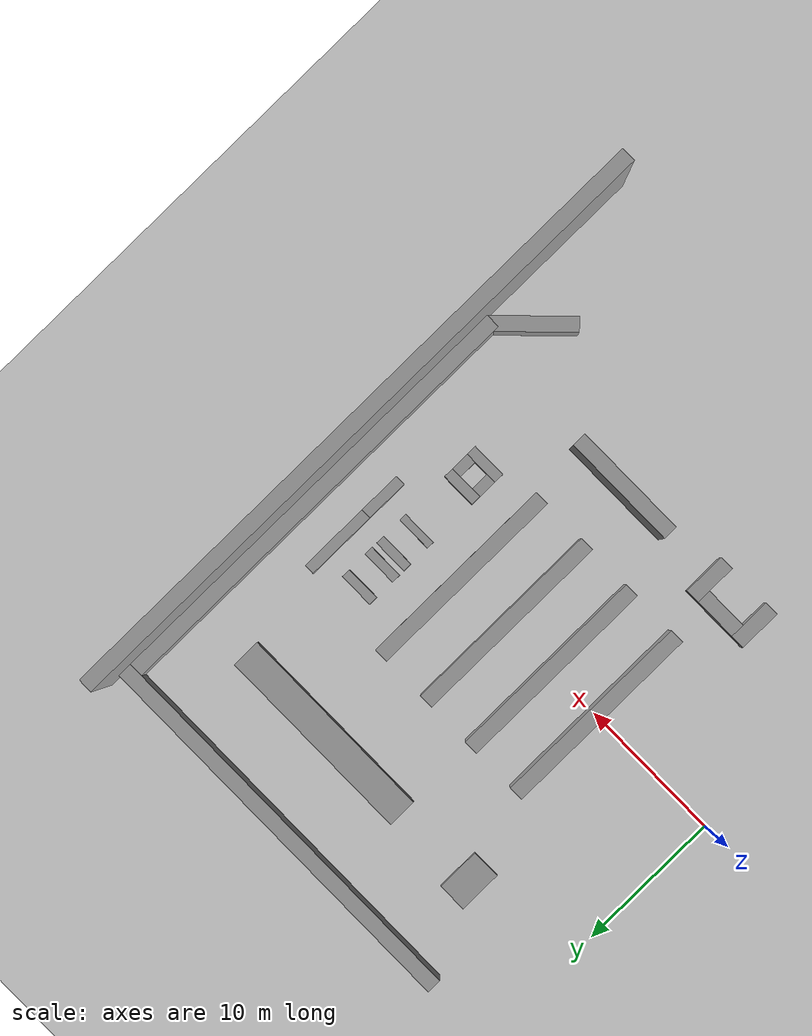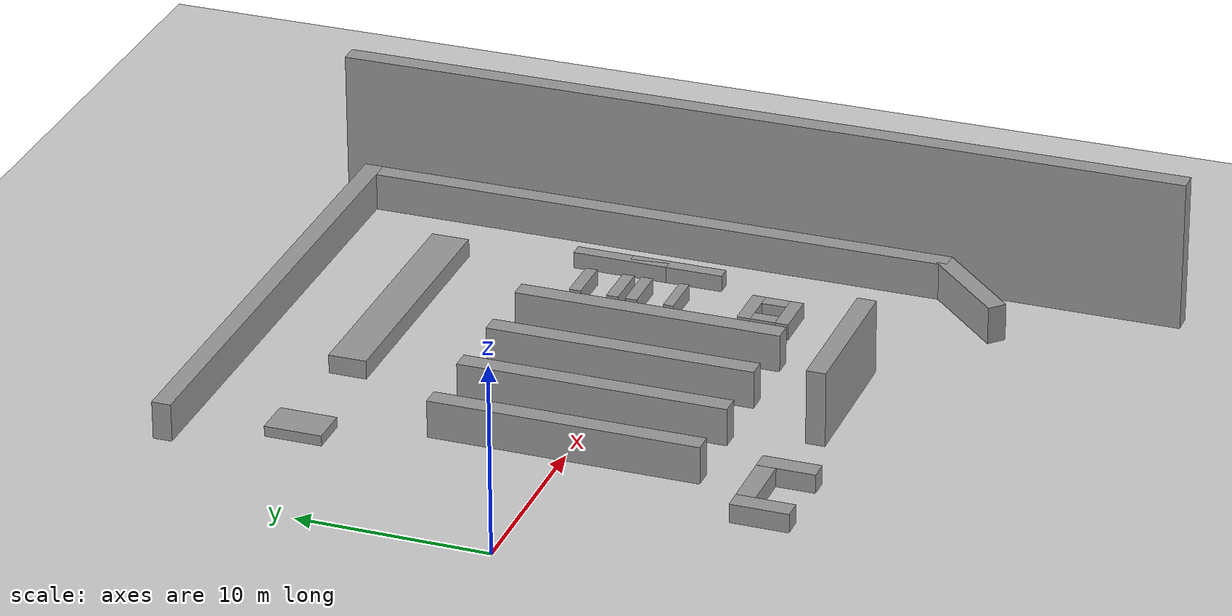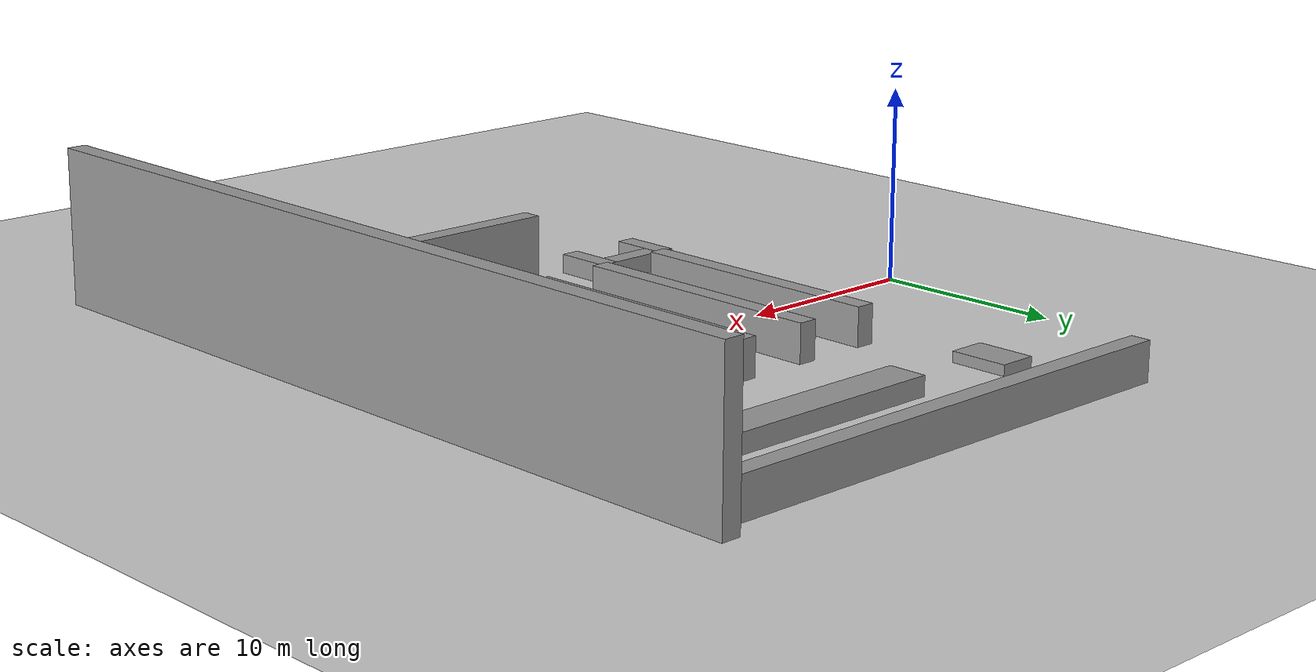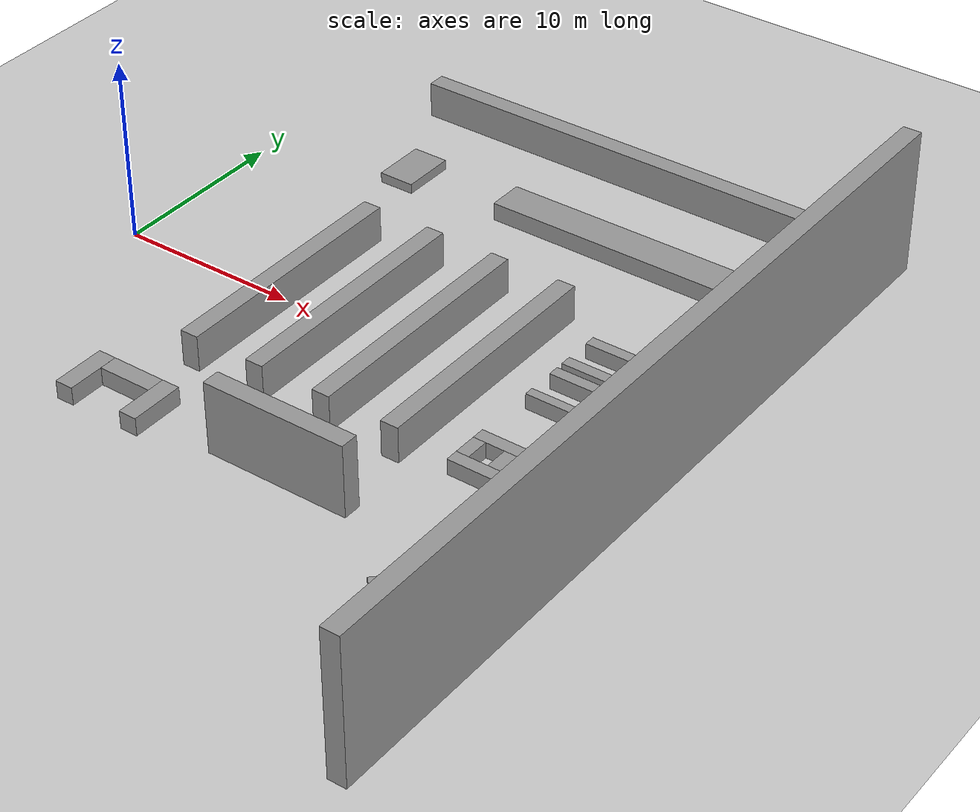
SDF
<sdf version="1.6">
 <world name="default">
  <model name="ground_plane">
   <static>1</static>
   <link name="link">
    <collision name="collision">
     <geometry><plane><normal>0 0 1</normal><size>100 100</size></plane></geometry>
     <surface>
      <contact><collide_bitmask>65535</collide_bitmask></contact>
      <friction><ode><mu>100</mu><mu2>50</mu2></ode></friction>
     </surface>
    </collision>
    <visual name="visual">
     <cast_shadows>0</cast_shadows>
     <geometry><plane><normal>0 0 1</normal><size>100 100</size></plane></geometry>
     <material>
      <script><uri>file://media/materials/scripts/gazebo.material</uri><name>Gazebo/Grey</name></script>
     </material>
    </visual>
   </link>
  </model>
  <model name="shelf_4">
   <link name="link">
    <inertial>
     <mass>1</mass>
     <inertia>
      <ixx>0.166667</ixx>
      <ixy>0</ixy>
      <ixz>0</ixz>
      <iyy>0.166667</iyy>
      <iyz>0</iyz>
      <izz>0.166667</izz>
     </inertia>
    </inertial>
    <visual name="visual">
     <geometry><box><size>1 14 2</size></box></geometry>
     <material>
      <script><name>Gazebo/Grey</name><uri>file://media/materials/scripts/gazebo.material</uri></script>
     </material>
    </visual>
    <collision name="collision">
     <geometry><box><size>1 14 2</size></box></geometry>
     <surface>
      <friction>
       <ode><mu>1</mu><mu2>1</mu2><fdir1>0 0 0</fdir1><slip1>0</slip1><slip2>0</slip2></ode>
       <torsional>
        <coefficient>1</coefficient>
        <patch_radius>0</patch_radius>
        <surface_radius>0</surface_radius>
        <use_patch_radius>1</use_patch_radius>
        <ode><slip>0</slip></ode>
       </torsional>
      </friction>
      <bounce><restitution_coefficient>0</restitution_coefficient><threshold>1e+06</threshold></bounce>
      <contact>
       <collide_without_contact>0</collide_without_contact>
       <collide_without_contact_bitmask>1</collide_without_contact_bitmask>
       <collide_bitmask>1</collide_bitmask>
       <ode>
        <soft_cfm>0</soft_cfm>
        <soft_erp>0.2</soft_erp>
        <kp>1e+13</kp>
        <kd>1</kd>
        <max_vel>0.01</max_vel>
        <min_depth>0</min_depth>
       </ode>
       <bullet>
        <split_impulse>1</split_impulse>
        <split_impulse_penetration_threshold>-0.01</split_impulse_penetration_threshold>
        <soft_cfm>0</soft_cfm>
        <soft_erp>0.2</soft_erp>
        <kp>1e+13</kp>
        <kd>1</kd>
       </bullet>
      </contact>
     </surface>
    </collision>
   </link>
   <static>1</static>
   <pose>10 0 1 0 -0 0</pose>
  </model>
  <model name="shelf_5">
   <link name="link">
    <inertial>
     <mass>1</mass>
     <inertia>
      <ixx>0.166667</ixx>
      <ixy>0</ixy>
      <ixz>0</ixz>
      <iyy>0.166667</iyy>
      <iyz>0</iyz>
      <izz>0.166667</izz>
     </inertia>
    </inertial>
    <visual name="visual">
     <geometry><box><size>1 14 2</size></box></geometry>
     <material>
      <script><name>Gazebo/Grey</name><uri>file://media/materials/scripts/gazebo.material</uri></script>
     </material>
    </visual>
    <collision name="collision">
     <geometry><box><size>1 14 2</size></box></geometry>
     <surface>
      <friction>
       <ode><mu>1</mu><mu2>1</mu2><fdir1>0 0 0</fdir1><slip1>0</slip1><slip2>0</slip2></ode>
       <torsional>
        <coefficient>1</coefficient>
        <patch_radius>0</patch_radius>
        <surface_radius>0</surface_radius>
        <use_patch_radius>1</use_patch_radius>
        <ode><slip>0</slip></ode>
       </torsional>
      </friction>
      <bounce><restitution_coefficient>0</restitution_coefficient><threshold>1e+06</threshold></bounce>
      <contact>
       <collide_without_contact>0</collide_without_contact>
       <collide_without_contact_bitmask>1</collide_without_contact_bitmask>
       <collide_bitmask>1</collide_bitmask>
       <ode>
        <soft_cfm>0</soft_cfm>
        <soft_erp>0.2</soft_erp>
        <kp>1e+13</kp>
        <kd>1</kd>
        <max_vel>0.01</max_vel>
        <min_depth>0</min_depth>
       </ode>
       <bullet>
        <split_impulse>1</split_impulse>
        <split_impulse_penetration_threshold>-0.01</split_impulse_penetration_threshold>
        <soft_cfm>0</soft_cfm>
        <soft_erp>0.2</soft_erp>
        <kp>1e+13</kp>
        <kd>1</kd>
       </bullet>
      </contact>
     </surface>
    </collision>
   </link>
   <static>1</static>
   <pose>14 0 1 0 -0 0</pose>
  </model>
  <model name="shelf_6">
   <link name="link">
    <inertial>
     <mass>1</mass>
     <inertia>
      <ixx>0.166667</ixx>
      <ixy>0</ixy>
      <ixz>0</ixz>
      <iyy>0.166667</iyy>
      <iyz>0</iyz>
      <izz>0.166667</izz>
     </inertia>
    </inertial>
    <visual name="visual">
     <geometry><box><size>1 14 2</size></box></geometry>
     <material>
      <script><name>Gazebo/Grey</name><uri>file://media/materials/scripts/gazebo.material</uri></script>
     </material>
    </visual>
    <collision name="collision">
     <geometry><box><size>1 14 2</size></box></geometry>
     <surface>
      <friction>
       <ode><mu>1</mu><mu2>1</mu2><fdir1>0 0 0</fdir1><slip1>0</slip1><slip2>0</slip2></ode>
       <torsional>
        <coefficient>1</coefficient>
        <patch_radius>0</patch_radius>
        <surface_radius>0</surface_radius>
        <use_patch_radius>1</use_patch_radius>
        <ode><slip>0</slip></ode>
       </torsional>
      </friction>
      <bounce><restitution_coefficient>0</restitution_coefficient><threshold>1e+06</threshold></bounce>
      <contact>
       <collide_without_contact>0</collide_without_contact>
       <collide_without_contact_bitmask>1</collide_without_contact_bitmask>
       <collide_bitmask>1</collide_bitmask>
       <ode>
        <soft_cfm>0</soft_cfm>
        <soft_erp>0.2</soft_erp>
        <kp>1e+13</kp>
        <kd>1</kd>
        <max_vel>0.01</max_vel>
        <min_depth>0</min_depth>
       </ode>
       <bullet>
        <split_impulse>1</split_impulse>
        <split_impulse_penetration_threshold>-0.01</split_impulse_penetration_threshold>
        <soft_cfm>0</soft_cfm>
        <soft_erp>0.2</soft_erp>
        <kp>1e+13</kp>
        <kd>1</kd>
       </bullet>
      </contact>
     </surface>
    </collision>
   </link>
   <static>1</static>
   <pose>18 0 1 0 -0 0</pose>
  </model>
  <model name="shelf_7">
   <link name="link">
    <inertial>
     <mass>1</mass>
     <inertia>
      <ixx>0.166667</ixx>
      <ixy>0</ixy>
      <ixz>0</ixz>
      <iyy>0.166667</iyy>
      <iyz>0</iyz>
      <izz>0.166667</izz>
     </inertia>
    </inertial>
    <visual name="visual">
     <geometry><box><size>1 14 2</size></box></geometry>
     <material>
      <script><name>Gazebo/Grey</name><uri>file://media/materials/scripts/gazebo.material</uri></script>
     </material>
    </visual>
    <collision name="collision">
     <geometry><box><size>1 14 2</size></box></geometry>
     <surface>
      <friction>
       <ode><mu>1</mu><mu2>1</mu2><fdir1>0 0 0</fdir1><slip1>0</slip1><slip2>0</slip2></ode>
       <torsional>
        <coefficient>1</coefficient>
        <patch_radius>0</patch_radius>
        <surface_radius>0</surface_radius>
        <use_patch_radius>1</use_patch_radius>
        <ode><slip>0</slip></ode>
       </torsional>
      </friction>
      <bounce><restitution_coefficient>0</restitution_coefficient><threshold>1e+06</threshold></bounce>
      <contact>
       <collide_without_contact>0</collide_without_contact>
       <collide_without_contact_bitmask>1</collide_without_contact_bitmask>
       <collide_bitmask>1</collide_bitmask>
       <ode>
        <soft_cfm>0</soft_cfm>
        <soft_erp>0.2</soft_erp>
        <kp>1e+13</kp>
        <kd>1</kd>
        <max_vel>0.01</max_vel>
        <min_depth>0</min_depth>
       </ode>
       <bullet>
        <split_impulse>1</split_impulse>
        <split_impulse_penetration_threshold>-0.01</split_impulse_penetration_threshold>
        <soft_cfm>0</soft_cfm>
        <soft_erp>0.2</soft_erp>
        <kp>1e+13</kp>
        <kd>1</kd>
       </bullet>
      </contact>
     </surface>
    </collision>
   </link>
   <static>1</static>
   <pose>22 0 1 0 -0 0</pose>
  </model>
  <model name="shelf_clone_clone">
   <link name="link">
    <inertial>
     <mass>1</mass>
     <inertia>
      <ixx>0.166667</ixx>
      <ixy>0</ixy>
      <ixz>0</ixz>
      <iyy>0.166667</iyy>
      <iyz>0</iyz>
      <izz>0.166667</izz>
     </inertia>
    </inertial>
    <visual name="visual">
     <geometry><box><size>0.706603 2.46632 0.879745</size></box></geometry>
     <material>
      <script><name>Gazebo/Grey</name><uri>file://media/materials/scripts/gazebo.material</uri></script>
     </material>
    </visual>
    <collision name="collision">
     <geometry><box><size>0.706603 2.46632 0.879745</size></box></geometry>
     <surface>
      <friction>
       <ode><mu>1</mu><mu2>1</mu2><fdir1>0 0 0</fdir1><slip1>0</slip1><slip2>0</slip2></ode>
       <torsional>
        <coefficient>1</coefficient>
        <patch_radius>0</patch_radius>
        <surface_radius>0</surface_radius>
        <use_patch_radius>1</use_patch_radius>
        <ode><slip>0</slip></ode>
       </torsional>
      </friction>
      <bounce><restitution_coefficient>0</restitution_coefficient><threshold>1e+06</threshold></bounce>
      <contact>
       <collide_without_contact>0</collide_without_contact>
       <collide_without_contact_bitmask>1</collide_without_contact_bitmask>
       <collide_bitmask>1</collide_bitmask>
       <ode>
        <soft_cfm>0</soft_cfm>
        <soft_erp>0.2</soft_erp>
        <kp>1e+13</kp>
        <kd>1</kd>
        <max_vel>0.01</max_vel>
        <min_depth>0</min_depth>
       </ode>
       <bullet>
        <split_impulse>1</split_impulse>
        <split_impulse_penetration_threshold>-0.01</split_impulse_penetration_threshold>
        <soft_cfm>0</soft_cfm>
        <soft_erp>0.2</soft_erp>
        <kp>1e+13</kp>
        <kd>1</kd>
       </bullet>
      </contact>
     </surface>
    </collision>
   </link>
   <static>1</static>
   <pose>26 -4 0.440412 0 0 -1.5708</pose>
  </model>
  <model name="shelf_clone_clone_0_clone">
   <link name="link">
    <inertial>
     <mass>1</mass>
     <inertia>
      <ixx>0.166667</ixx>
      <ixy>0</ixy>
      <ixz>0</ixz>
      <iyy>0.166667</iyy>
      <iyz>0</iyz>
      <izz>0.166667</izz>
     </inertia>
    </inertial>
    <visual name="visual">
     <geometry><box><size>0.706603 1.29816 0.879745</size></box></geometry>
     <material>
      <script><name>Gazebo/Grey</name><uri>file://media/materials/scripts/gazebo.material</uri></script>
     </material>
    </visual>
    <collision name="collision">
     <geometry><box><size>0.706603 1.29816 0.879745</size></box></geometry>
     <surface>
      <friction>
       <ode><mu>1</mu><mu2>1</mu2><fdir1>0 0 0</fdir1><slip1>0</slip1><slip2>0</slip2></ode>
       <torsional>
        <coefficient>1</coefficient>
        <patch_radius>0</patch_radius>
        <surface_radius>0</surface_radius>
        <use_patch_radius>1</use_patch_radius>
        <ode><slip>0</slip></ode>
       </torsional>
      </friction>
      <bounce><restitution_coefficient>0</restitution_coefficient><threshold>1e+06</threshold></bounce>
      <contact>
       <collide_without_contact>0</collide_without_contact>
       <collide_without_contact_bitmask>1</collide_without_contact_bitmask>
       <collide_bitmask>1</collide_bitmask>
       <ode>
        <soft_cfm>0</soft_cfm>
        <soft_erp>0.2</soft_erp>
        <kp>1e+13</kp>
        <kd>1</kd>
        <max_vel>0.01</max_vel>
        <min_depth>0</min_depth>
       </ode>
       <bullet>
        <split_impulse>1</split_impulse>
        <split_impulse_penetration_threshold>-0.01</split_impulse_penetration_threshold>
        <soft_cfm>0</soft_cfm>
        <soft_erp>0.2</soft_erp>
        <kp>1e+13</kp>
        <kd>1</kd>
       </bullet>
      </contact>
     </surface>
    </collision>
   </link>
   <static>1</static>
   <pose>25.1203 -5 0.440412 0 0 -4e-06</pose>
  </model>
  <model name="shelf_clone_clone_clone_clone_0_clone">
   <link name="link">
    <inertial>
     <mass>1</mass>
     <inertia>
      <ixx>0.166667</ixx>
      <ixy>0</ixy>
      <ixz>0</ixz>
      <iyy>0.166667</iyy>
      <iyz>0</iyz>
      <izz>0.166667</izz>
     </inertia>
    </inertial>
    <visual name="visual">
     <geometry><box><size>0.6246 2.46632 0.879745</size></box></geometry>
     <material>
      <script><name>Gazebo/Grey</name><uri>file://media/materials/scripts/gazebo.material</uri></script>
     </material>
    </visual>
    <collision name="collision">
     <geometry><box><size>0.6246 2.46632 0.879745</size></box></geometry>
     <surface>
      <friction>
       <ode><mu>1</mu><mu2>1</mu2><fdir1>0 0 0</fdir1><slip1>0</slip1><slip2>0</slip2></ode>
       <torsional>
        <coefficient>1</coefficient>
        <patch_radius>0</patch_radius>
        <surface_radius>0</surface_radius>
        <use_patch_radius>1</use_patch_radius>
        <ode><slip>0</slip></ode>
       </torsional>
      </friction>
      <bounce><restitution_coefficient>0</restitution_coefficient><threshold>1e+06</threshold></bounce>
      <contact>
       <collide_without_contact>0</collide_without_contact>
       <collide_without_contact_bitmask>1</collide_without_contact_bitmask>
       <collide_bitmask>1</collide_bitmask>
       <ode>
        <soft_cfm>0</soft_cfm>
        <soft_erp>0.2</soft_erp>
        <kp>1e+13</kp>
        <kd>1</kd>
        <max_vel>0.01</max_vel>
        <min_depth>0</min_depth>
       </ode>
       <bullet>
        <split_impulse>1</split_impulse>
        <split_impulse_penetration_threshold>-0.01</split_impulse_penetration_threshold>
        <soft_cfm>0</soft_cfm>
        <soft_erp>0.2</soft_erp>
        <kp>1e+13</kp>
        <kd>1</kd>
       </bullet>
      </contact>
     </surface>
    </collision>
   </link>
   <static>1</static>
   <pose>26 2 0.440412 0 0 -1.5708</pose>
  </model>
  <model name="shelf_clone_clone_clone_clone_0_clone_clone">
   <link name="link">
    <inertial>
     <mass>1</mass>
     <inertia>
      <ixx>0.166667</ixx>
      <ixy>0</ixy>
      <ixz>0</ixz>
      <iyy>0.166667</iyy>
      <iyz>0</iyz>
      <izz>0.166667</izz>
     </inertia>
    </inertial>
    <visual name="visual">
     <geometry><box><size>0.6246 2.46632 0.879745</size></box></geometry>
     <material>
      <script><name>Gazebo/Grey</name><uri>file://media/materials/scripts/gazebo.material</uri></script>
     </material>
    </visual>
    <collision name="collision">
     <geometry><box><size>0.6246 2.46632 0.879745</size></box></geometry>
     <surface>
      <friction>
       <ode><mu>1</mu><mu2>1</mu2><fdir1>0 0 0</fdir1><slip1>0</slip1><slip2>0</slip2></ode>
       <torsional>
        <coefficient>1</coefficient>
        <patch_radius>0</patch_radius>
        <surface_radius>0</surface_radius>
        <use_patch_radius>1</use_patch_radius>
        <ode><slip>0</slip></ode>
       </torsional>
      </friction>
      <bounce><restitution_coefficient>0</restitution_coefficient><threshold>1e+06</threshold></bounce>
      <contact>
       <collide_without_contact>0</collide_without_contact>
       <collide_without_contact_bitmask>1</collide_without_contact_bitmask>
       <collide_bitmask>1</collide_bitmask>
       <ode>
        <soft_cfm>0</soft_cfm>
        <soft_erp>0.2</soft_erp>
        <kp>1e+13</kp>
        <kd>1</kd>
        <max_vel>0.01</max_vel>
        <min_depth>0</min_depth>
       </ode>
       <bullet>
        <split_impulse>1</split_impulse>
        <split_impulse_penetration_threshold>-0.01</split_impulse_penetration_threshold>
        <soft_cfm>0</soft_cfm>
        <soft_erp>0.2</soft_erp>
        <kp>1e+13</kp>
        <kd>1</kd>
       </bullet>
      </contact>
     </surface>
    </collision>
   </link>
   <static>1</static>
   <pose>26 3 0.440412 0 0 -1.5708</pose>
  </model>
  <model name="shelf_clone_clone_clone_clone_1_clone">
   <link name="link">
    <inertial>
     <mass>1</mass>
     <inertia>
      <ixx>0.166667</ixx>
      <ixy>0</ixy>
      <ixz>0</ixz>
      <iyy>0.166667</iyy>
      <iyz>0</iyz>
      <izz>0.166667</izz>
     </inertia>
    </inertial>
    <visual name="visual">
     <geometry><box><size>0.522227 2.46632 0.879745</size></box></geometry>
     <material>
      <script><name>Gazebo/Grey</name><uri>file://media/materials/scripts/gazebo.material</uri></script>
     </material>
    </visual>
    <collision name="collision">
     <geometry><box><size>0.522227 2.46632 0.879745</size></box></geometry>
     <surface>
      <friction>
       <ode><mu>1</mu><mu2>1</mu2><fdir1>0 0 0</fdir1><slip1>0</slip1><slip2>0</slip2></ode>
       <torsional>
        <coefficient>1</coefficient>
        <patch_radius>0</patch_radius>
        <surface_radius>0</surface_radius>
        <use_patch_radius>1</use_patch_radius>
        <ode><slip>0</slip></ode>
       </torsional>
      </friction>
      <bounce><restitution_coefficient>0</restitution_coefficient><threshold>1e+06</threshold></bounce>
      <contact>
       <collide_without_contact>0</collide_without_contact>
       <collide_without_contact_bitmask>1</collide_without_contact_bitmask>
       <collide_bitmask>1</collide_bitmask>
       <ode>
        <soft_cfm>0</soft_cfm>
        <soft_erp>0.2</soft_erp>
        <kp>1e+13</kp>
        <kd>1</kd>
        <max_vel>0.01</max_vel>
        <min_depth>0</min_depth>
       </ode>
       <bullet>
        <split_impulse>1</split_impulse>
        <split_impulse_penetration_threshold>-0.01</split_impulse_penetration_threshold>
        <soft_cfm>0</soft_cfm>
        <soft_erp>0.2</soft_erp>
        <kp>1e+13</kp>
        <kd>1</kd>
       </bullet>
      </contact>
     </surface>
    </collision>
   </link>
   <static>1</static>
   <pose>26 0 0.440412 0 0 -1.5708</pose>
  </model>
  <model name="shelf_clone_clone_clone">
   <link name="link">
    <inertial>
     <mass>1</mass>
     <inertia>
      <ixx>0.166667</ixx>
      <ixy>0</ixy>
      <ixz>0</ixz>
      <iyy>0.166667</iyy>
      <iyz>0</iyz>
      <izz>0.166667</izz>
     </inertia>
    </inertial>
    <visual name="visual">
     <geometry><box><size>0.706603 2.46632 0.879745</size></box></geometry>
     <material>
      <script><name>Gazebo/Grey</name><uri>file://media/materials/scripts/gazebo.material</uri></script>
     </material>
    </visual>
    <collision name="collision">
     <geometry><box><size>0.706603 2.46632 0.879745</size></box></geometry>
     <surface>
      <friction>
       <ode><mu>1</mu><mu2>1</mu2><fdir1>0 0 0</fdir1><slip1>0</slip1><slip2>0</slip2></ode>
       <torsional>
        <coefficient>1</coefficient>
        <patch_radius>0</patch_radius>
        <surface_radius>0</surface_radius>
        <use_patch_radius>1</use_patch_radius>
        <ode><slip>0</slip></ode>
       </torsional>
      </friction>
      <bounce><restitution_coefficient>0</restitution_coefficient><threshold>1e+06</threshold></bounce>
      <contact>
       <collide_without_contact>0</collide_without_contact>
       <collide_without_contact_bitmask>1</collide_without_contact_bitmask>
       <collide_bitmask>1</collide_bitmask>
       <ode>
        <soft_cfm>0</soft_cfm>
        <soft_erp>0.2</soft_erp>
        <kp>1e+13</kp>
        <kd>1</kd>
        <max_vel>0.01</max_vel>
        <min_depth>0</min_depth>
       </ode>
       <bullet>
        <split_impulse>1</split_impulse>
        <split_impulse_penetration_threshold>-0.01</split_impulse_penetration_threshold>
        <soft_cfm>0</soft_cfm>
        <soft_erp>0.2</soft_erp>
        <kp>1e+13</kp>
        <kd>1</kd>
       </bullet>
      </contact>
     </surface>
    </collision>
   </link>
   <static>1</static>
   <pose>26 -6 0.440412 0 0 -1.5708</pose>
  </model>
  <model name="shelf_clone_clone_0_clone_clone">
   <link name="link">
    <inertial>
     <mass>1</mass>
     <inertia>
      <ixx>0.166667</ixx>
      <ixy>0</ixy>
      <ixz>0</ixz>
      <iyy>0.166667</iyy>
      <iyz>0</iyz>
      <izz>0.166667</izz>
     </inertia>
    </inertial>
    <visual name="visual">
     <geometry><box><size>0.706603 1.29816 0.879745</size></box></geometry>
     <material>
      <script><name>Gazebo/Grey</name><uri>file://media/materials/scripts/gazebo.material</uri></script>
     </material>
    </visual>
    <collision name="collision">
     <geometry><box><size>0.706603 1.29816 0.879745</size></box></geometry>
     <surface>
      <friction>
       <ode><mu>1</mu><mu2>1</mu2><fdir1>0 0 0</fdir1><slip1>0</slip1><slip2>0</slip2></ode>
       <torsional>
        <coefficient>1</coefficient>
        <patch_radius>0</patch_radius>
        <surface_radius>0</surface_radius>
        <use_patch_radius>1</use_patch_radius>
        <ode><slip>0</slip></ode>
       </torsional>
      </friction>
      <bounce><restitution_coefficient>0</restitution_coefficient><threshold>1e+06</threshold></bounce>
      <contact>
       <collide_without_contact>0</collide_without_contact>
       <collide_without_contact_bitmask>1</collide_without_contact_bitmask>
       <collide_bitmask>1</collide_bitmask>
       <ode>
        <soft_cfm>0</soft_cfm>
        <soft_erp>0.2</soft_erp>
        <kp>1e+13</kp>
        <kd>1</kd>
        <max_vel>0.01</max_vel>
        <min_depth>0</min_depth>
       </ode>
       <bullet>
        <split_impulse>1</split_impulse>
        <split_impulse_penetration_threshold>-0.01</split_impulse_penetration_threshold>
        <soft_cfm>0</soft_cfm>
        <soft_erp>0.2</soft_erp>
        <kp>1e+13</kp>
        <kd>1</kd>
       </bullet>
      </contact>
     </surface>
    </collision>
   </link>
   <static>1</static>
   <pose>26.8804 -5 0.440412 0 0 -4e-06</pose>
  </model>
  <model name="shelf_clone_clone_clone_clone_0_clone_clone_0">
   <link name="link">
    <inertial>
     <mass>1</mass>
     <inertia>
      <ixx>0.166667</ixx>
      <ixy>0</ixy>
      <ixz>0</ixz>
      <iyy>0.166667</iyy>
      <iyz>0</iyz>
      <izz>0.166667</izz>
     </inertia>
    </inertial>
    <visual name="visual">
     <geometry><box><size>0.6246 2.46632 0.879745</size></box></geometry>
     <material>
      <script><name>Gazebo/Grey</name><uri>file://media/materials/scripts/gazebo.material</uri></script>
     </material>
    </visual>
    <collision name="collision">
     <geometry><box><size>0.6246 2.46632 0.879745</size></box></geometry>
     <surface>
      <friction>
       <ode><mu>1</mu><mu2>1</mu2><fdir1>0 0 0</fdir1><slip1>0</slip1><slip2>0</slip2></ode>
       <torsional>
        <coefficient>1</coefficient>
        <patch_radius>0</patch_radius>
        <surface_radius>0</surface_radius>
        <use_patch_radius>1</use_patch_radius>
        <ode><slip>0</slip></ode>
       </torsional>
      </friction>
      <bounce><restitution_coefficient>0</restitution_coefficient><threshold>1e+06</threshold></bounce>
      <contact>
       <collide_without_contact>0</collide_without_contact>
       <collide_without_contact_bitmask>1</collide_without_contact_bitmask>
       <collide_bitmask>1</collide_bitmask>
       <ode>
        <soft_cfm>0</soft_cfm>
        <soft_erp>0.2</soft_erp>
        <kp>1e+13</kp>
        <kd>1</kd>
        <max_vel>0.01</max_vel>
        <min_depth>0</min_depth>
       </ode>
       <bullet>
        <split_impulse>1</split_impulse>
        <split_impulse_penetration_threshold>-0.01</split_impulse_penetration_threshold>
        <soft_cfm>0</soft_cfm>
        <soft_erp>0.2</soft_erp>
        <kp>1e+13</kp>
        <kd>1</kd>
       </bullet>
      </contact>
     </surface>
    </collision>
   </link>
   <static>1</static>
   <pose>26 5 0.440412 0 0 -1.5708</pose>
  </model>
  <model name="shelf_clone_clone_clone_0_clone_0">
   <link name="link">
    <inertial>
     <mass>1</mass>
     <inertia>
      <ixx>0.166667</ixx>
      <ixy>0</ixy>
      <ixz>0</ixz>
      <iyy>0.166667</iyy>
      <iyz>0</iyz>
      <izz>0.166667</izz>
     </inertia>
    </inertial>
    <visual name="visual">
     <geometry><box><size>0.706603 4.99938 0.879745</size></box></geometry>
     <material>
      <script><name>Gazebo/Grey</name><uri>file://media/materials/scripts/gazebo.material</uri></script>
     </material>
    </visual>
    <collision name="collision">
     <geometry><box><size>0.706603 4.99938 0.879745</size></box></geometry>
     <surface>
      <friction>
       <ode><mu>1</mu><mu2>1</mu2><fdir1>0 0 0</fdir1><slip1>0</slip1><slip2>0</slip2></ode>
       <torsional>
        <coefficient>1</coefficient>
        <patch_radius>0</patch_radius>
        <surface_radius>0</surface_radius>
        <use_patch_radius>1</use_patch_radius>
        <ode><slip>0</slip></ode>
       </torsional>
      </friction>
      <bounce><restitution_coefficient>0</restitution_coefficient><threshold>1e+06</threshold></bounce>
      <contact>
       <collide_without_contact>0</collide_without_contact>
       <collide_without_contact_bitmask>1</collide_without_contact_bitmask>
       <collide_bitmask>1</collide_bitmask>
       <ode>
        <soft_cfm>0</soft_cfm>
        <soft_erp>0.2</soft_erp>
        <kp>1e+13</kp>
        <kd>1</kd>
        <max_vel>0.01</max_vel>
        <min_depth>0</min_depth>
       </ode>
       <bullet>
        <split_impulse>1</split_impulse>
        <split_impulse_penetration_threshold>-0.01</split_impulse_penetration_threshold>
        <soft_cfm>0</soft_cfm>
        <soft_erp>0.2</soft_erp>
        <kp>1e+13</kp>
        <kd>1</kd>
       </bullet>
      </contact>
     </surface>
    </collision>
   </link>
   <static>1</static>
   <pose>29 4 0.440412 0 -0 3.14159</pose>
  </model>
  <model name="shelf_clone_clone_clone_0_clone_0_clone">
   <link name="link">
    <inertial>
     <mass>1</mass>
     <inertia>
      <ixx>0.166667</ixx>
      <ixy>0</ixy>
      <ixz>0</ixz>
      <iyy>0.166667</iyy>
      <iyz>0</iyz>
      <izz>0.166667</izz>
     </inertia>
    </inertial>
    <visual name="visual">
     <geometry><box><size>0.706603 4.99938 0.879745</size></box></geometry>
     <material>
      <script><name>Gazebo/Grey</name><uri>file://media/materials/scripts/gazebo.material</uri></script>
     </material>
    </visual>
    <collision name="collision">
     <geometry><box><size>0.706603 4.99938 0.879745</size></box></geometry>
     <surface>
      <friction>
       <ode><mu>1</mu><mu2>1</mu2><fdir1>0 0 0</fdir1><slip1>0</slip1><slip2>0</slip2></ode>
       <torsional>
        <coefficient>1</coefficient>
        <patch_radius>0</patch_radius>
        <surface_radius>0</surface_radius>
        <use_patch_radius>1</use_patch_radius>
        <ode><slip>0</slip></ode>
       </torsional>
      </friction>
      <bounce><restitution_coefficient>0</restitution_coefficient><threshold>1e+06</threshold></bounce>
      <contact>
       <collide_without_contact>0</collide_without_contact>
       <collide_without_contact_bitmask>1</collide_without_contact_bitmask>
       <collide_bitmask>1</collide_bitmask>
       <ode>
        <soft_cfm>0</soft_cfm>
        <soft_erp>0.2</soft_erp>
        <kp>1e+13</kp>
        <kd>1</kd>
        <max_vel>0.01</max_vel>
        <min_depth>0</min_depth>
       </ode>
       <bullet>
        <split_impulse>1</split_impulse>
        <split_impulse_penetration_threshold>-0.01</split_impulse_penetration_threshold>
        <soft_cfm>0</soft_cfm>
        <soft_erp>0.2</soft_erp>
        <kp>1e+13</kp>
        <kd>1</kd>
       </bullet>
      </contact>
     </surface>
    </collision>
   </link>
   <static>1</static>
   <pose>29 1 0.440412 0 -0 3.14159</pose>
  </model>
  <model name="Cube_4">
   <link name="link_1">
    <inertial>
     <mass>1</mass>
     <inertia>
      <ixx>0.166667</ixx>
      <ixy>0</ixy>
      <ixz>0</ixz>
      <iyy>0.166667</iyy>
      <iyz>0</iyz>
      <izz>0.166667</izz>
     </inertia>
    </inertial>
    <visual name="visual">
     <geometry><box><size>4 1 1</size></box></geometry>
     <material>
      <lighting>1</lighting>
      <script><uri>file://media/materials/scripts/gazebo.material</uri><name>Gazebo/Grey</name></script>
     </material>
    </visual>
    <collision name="collision">
     <geometry><box><size>4 1 1</size></box></geometry>
     <surface>
      <friction>
       <ode><mu>1</mu><mu2>1</mu2><fdir1>0 0 0</fdir1><slip1>0</slip1><slip2>0</slip2></ode>
       <torsional>
        <coefficient>1</coefficient>
        <patch_radius>0</patch_radius>
        <surface_radius>0</surface_radius>
        <use_patch_radius>1</use_patch_radius>
        <ode><slip>0</slip></ode>
       </torsional>
      </friction>
      <bounce><restitution_coefficient>0</restitution_coefficient><threshold>1e+06</threshold></bounce>
      <contact>
       <collide_without_contact>0</collide_without_contact>
       <collide_without_contact_bitmask>1</collide_without_contact_bitmask>
       <collide_bitmask>1</collide_bitmask>
       <ode>
        <soft_cfm>0</soft_cfm>
        <soft_erp>0.2</soft_erp>
        <kp>1e+13</kp>
        <kd>1</kd>
        <max_vel>0.01</max_vel>
        <min_depth>0</min_depth>
       </ode>
       <bullet>
        <split_impulse>1</split_impulse>
        <split_impulse_penetration_threshold>-0.01</split_impulse_penetration_threshold>
        <soft_cfm>0</soft_cfm>
        <soft_erp>0.2</soft_erp>
        <kp>1e+13</kp>
        <kd>1</kd>
       </bullet>
      </contact>
     </surface>
    </collision>
   </link>
   <static>1</static>
   <pose>9 -10 0.489242 0 -0 0</pose>
  </model>
  <model name="Cube_5">
   <link name="link_1">
    <inertial>
     <mass>1</mass>
     <inertia>
      <ixx>0.166667</ixx>
      <ixy>0</ixy>
      <ixz>0</ixz>
      <iyy>0.166667</iyy>
      <iyz>0</iyz>
      <izz>0.166667</izz>
     </inertia>
    </inertial>
    <visual name="visual">
     <geometry><box><size>1 3 1</size></box></geometry>
     <material>
      <lighting>1</lighting>
      <script><uri>file://media/materials/scripts/gazebo.material</uri><name>Gazebo/Grey</name></script>
     </material>
    </visual>
    <collision name="collision">
     <geometry><box><size>1 3 1</size></box></geometry>
     <surface>
      <friction>
       <ode><mu>1</mu><mu2>1</mu2><fdir1>0 0 0</fdir1><slip1>0</slip1><slip2>0</slip2></ode>
       <torsional>
        <coefficient>1</coefficient>
        <patch_radius>0</patch_radius>
        <surface_radius>0</surface_radius>
        <use_patch_radius>1</use_patch_radius>
        <ode><slip>0</slip></ode>
       </torsional>
      </friction>
      <bounce><restitution_coefficient>0</restitution_coefficient><threshold>1e+06</threshold></bounce>
      <contact>
       <collide_without_contact>0</collide_without_contact>
       <collide_without_contact_bitmask>1</collide_without_contact_bitmask>
       <collide_bitmask>1</collide_bitmask>
       <ode>
        <soft_cfm>0</soft_cfm>
        <soft_erp>0.2</soft_erp>
        <kp>1e+13</kp>
        <kd>1</kd>
        <max_vel>0.01</max_vel>
        <min_depth>0</min_depth>
       </ode>
       <bullet>
        <split_impulse>1</split_impulse>
        <split_impulse_penetration_threshold>-0.01</split_impulse_penetration_threshold>
        <soft_cfm>0</soft_cfm>
        <soft_erp>0.2</soft_erp>
        <kp>1e+13</kp>
        <kd>1</kd>
       </bullet>
      </contact>
     </surface>
    </collision>
   </link>
   <static>1</static>
   <pose>11 -11 0.492748 0 -0 0</pose>
  </model>
  <model name="Cube_5_clone">
   <link name="link_1">
    <inertial>
     <mass>1</mass>
     <inertia>
      <ixx>0.166667</ixx>
      <ixy>0</ixy>
      <ixz>0</ixz>
      <iyy>0.166667</iyy>
      <iyz>0</iyz>
      <izz>0.166667</izz>
     </inertia>
    </inertial>
    <visual name="visual">
     <geometry><box><size>1 3 1</size></box></geometry>
     <material>
      <lighting>1</lighting>
      <script><uri>file://media/materials/scripts/gazebo.material</uri><name>Gazebo/Grey</name></script>
     </material>
    </visual>
    <collision name="collision">
     <geometry><box><size>1 3 1</size></box></geometry>
     <surface>
      <friction>
       <ode><mu>1</mu><mu2>1</mu2><fdir1>0 0 0</fdir1><slip1>0</slip1><slip2>0</slip2></ode>
       <torsional>
        <coefficient>1</coefficient>
        <patch_radius>0</patch_radius>
        <surface_radius>0</surface_radius>
        <use_patch_radius>1</use_patch_radius>
        <ode><slip>0</slip></ode>
       </torsional>
      </friction>
      <bounce><restitution_coefficient>0</restitution_coefficient><threshold>1e+06</threshold></bounce>
      <contact>
       <collide_without_contact>0</collide_without_contact>
       <collide_without_contact_bitmask>1</collide_without_contact_bitmask>
       <collide_bitmask>1</collide_bitmask>
       <ode>
        <soft_cfm>0</soft_cfm>
        <soft_erp>0.2</soft_erp>
        <kp>1e+13</kp>
        <kd>1</kd>
        <max_vel>0.01</max_vel>
        <min_depth>0</min_depth>
       </ode>
       <bullet>
        <split_impulse>1</split_impulse>
        <split_impulse_penetration_threshold>-0.01</split_impulse_penetration_threshold>
        <soft_cfm>0</soft_cfm>
        <soft_erp>0.2</soft_erp>
        <kp>1e+13</kp>
        <kd>1</kd>
       </bullet>
      </contact>
     </surface>
    </collision>
   </link>
   <static>1</static>
   <pose>7 -11 0.492748 0 -0 0</pose>
  </model>
  <model name="Cube_2">
   <link name="link_1">
    <inertial>
     <mass>1</mass>
     <inertia>
      <ixx>0.166667</ixx>
      <ixy>0</ixy>
      <ixz>0</ixz>
      <iyy>0.166667</iyy>
      <iyz>0</iyz>
      <izz>0.166667</izz>
     </inertia>
    </inertial>
    <visual name="visual">
     <geometry><box><size>2 3 0.55342</size></box></geometry>
     <material>
      <lighting>1</lighting>
      <script><uri>file://media/materials/scripts/gazebo.material</uri><name>Gazebo/Grey</name></script>
     </material>
    </visual>
    <collision name="collision">
     <geometry><box><size>2 3 0.55342</size></box></geometry>
     <surface>
      <friction>
       <ode><mu>1</mu><mu2>1</mu2><fdir1>0 0 0</fdir1><slip1>0</slip1><slip2>0</slip2></ode>
       <torsional>
        <coefficient>1</coefficient>
        <patch_radius>0</patch_radius>
        <surface_radius>0</surface_radius>
        <use_patch_radius>1</use_patch_radius>
        <ode><slip>0</slip></ode>
       </torsional>
      </friction>
      <bounce><restitution_coefficient>0</restitution_coefficient><threshold>1e+06</threshold></bounce>
      <contact>
       <collide_without_contact>0</collide_without_contact>
       <collide_without_contact_bitmask>1</collide_without_contact_bitmask>
       <collide_bitmask>1</collide_bitmask>
       <ode>
        <soft_cfm>0</soft_cfm>
        <soft_erp>0.2</soft_erp>
        <kp>1e+13</kp>
        <kd>1</kd>
        <max_vel>0.01</max_vel>
        <min_depth>0</min_depth>
       </ode>
       <bullet>
        <split_impulse>1</split_impulse>
        <split_impulse_penetration_threshold>-0.01</split_impulse_penetration_threshold>
        <soft_cfm>0</soft_cfm>
        <soft_erp>0.2</soft_erp>
        <kp>1e+13</kp>
        <kd>1</kd>
       </bullet>
      </contact>
     </surface>
    </collision>
   </link>
   <static>1</static>
   <pose>8 13 0.258015 0 -0 0</pose>
  </model>
  <model name="tall_shelf_0">
   <link name="link_0">
    <inertial>
     <mass>32</mass>
     <inertia><ixx>45.3334</ixx><ixy>0</ixy><ixz>0</ixz><iyy>213.334</iyy><iyz>0</iyz><izz>173.334</izz></inertia>
    </inertial>
    <visual name="visual">
     <geometry><box><size>8 1 4</size></box></geometry>
     <material>
      <lighting>1</lighting>
      <script><uri>file://media/materials/scripts/gazebo.material</uri><name>Gazebo/Grey</name></script>
     </material>
    </visual>
    <collision name="collision">
     <geometry><box><size>8 1 4</size></box></geometry>
     <surface>
      <friction>
       <ode><mu>1</mu><mu2>1</mu2><fdir1>0 0 0</fdir1><slip1>0</slip1><slip2>0</slip2></ode>
       <torsional>
        <coefficient>1</coefficient>
        <patch_radius>0</patch_radius>
        <surface_radius>0</surface_radius>
        <use_patch_radius>1</use_patch_radius>
        <ode><slip>0</slip></ode>
       </torsional>
      </friction>
      <bounce><restitution_coefficient>0</restitution_coefficient><threshold>1e+06</threshold></bounce>
      <contact>
       <collide_without_contact>0</collide_without_contact>
       <collide_without_contact_bitmask>1</collide_without_contact_bitmask>
       <collide_bitmask>1</collide_bitmask>
       <ode>
        <soft_cfm>0</soft_cfm>
        <soft_erp>0.2</soft_erp>
        <kp>1e+13</kp>
        <kd>1</kd>
        <max_vel>0.01</max_vel>
        <min_depth>0</min_depth>
       </ode>
       <bullet>
        <split_impulse>1</split_impulse>
        <split_impulse_penetration_threshold>-0.01</split_impulse_penetration_threshold>
        <soft_cfm>0</soft_cfm>
        <soft_erp>0.2</soft_erp>
        <kp>1e+13</kp>
        <kd>1</kd>
       </bullet>
      </contact>
     </surface>
    </collision>
   </link>
   <static>1</static>
   <pose>19 -11 2 0 -0 0</pose>
  </model>
  <model name="wall2_1">
   <link name="link_0">
    <inertial>
     <mass>92.0004</mass>
     <inertia><ixx>4178.36</ixx><ixy>0</ixy><ixz>0</ixz><iyy>130.334</iyy><iyz>0</iyz><izz>4063.36</izz></inertia>
    </inertial>
    <visual name="visual">
     <geometry><box><size>1 44.9896 8</size></box></geometry>
     <material>
      <lighting>1</lighting>
      <script><uri>file://media/materials/scripts/gazebo.material</uri><name>Gazebo/Grey</name></script>
     </material>
    </visual>
    <collision name="collision">
     <geometry><box><size>1 44.9896 8</size></box></geometry>
     <surface>
      <friction>
       <ode><mu>1</mu><mu2>1</mu2><fdir1>0 0 0</fdir1><slip1>0</slip1><slip2>0</slip2></ode>
       <torsional>
        <coefficient>1</coefficient>
        <patch_radius>0</patch_radius>
        <surface_radius>0</surface_radius>
        <use_patch_radius>1</use_patch_radius>
        <ode><slip>0</slip></ode>
       </torsional>
      </friction>
      <bounce><restitution_coefficient>0</restitution_coefficient><threshold>1e+06</threshold></bounce>
      <contact>
       <collide_without_contact>0</collide_without_contact>
       <collide_without_contact_bitmask>1</collide_without_contact_bitmask>
       <collide_bitmask>1</collide_bitmask>
       <ode>
        <soft_cfm>0</soft_cfm>
        <soft_erp>0.2</soft_erp>
        <kp>1e+13</kp>
        <kd>1</kd>
        <max_vel>0.01</max_vel>
        <min_depth>0</min_depth>
       </ode>
       <bullet>
        <split_impulse>1</split_impulse>
        <split_impulse_penetration_threshold>-0.01</split_impulse_penetration_threshold>
        <soft_cfm>0</soft_cfm>
        <soft_erp>0.2</soft_erp>
        <kp>1e+13</kp>
        <kd>1</kd>
       </bullet>
      </contact>
     </surface>
    </collision>
   </link>
   <static>1</static>
   <pose>33 -2 4 0 -0 0</pose>
  </model>
  <model name="shelf_clone">
   <link name="link">
    <inertial>
     <mass>1</mass>
     <inertia>
      <ixx>0.166667</ixx>
      <ixy>0</ixy>
      <ixz>0</ixz>
      <iyy>0.166667</iyy>
      <iyz>0</iyz>
      <izz>0.166667</izz>
     </inertia>
    </inertial>
    <visual name="visual">
     <geometry><box><size>1 28 2</size></box></geometry>
     <material>
      <script><name>Gazebo/Grey</name><uri>file://media/materials/scripts/gazebo.material</uri></script>
     </material>
    </visual>
    <collision name="collision">
     <geometry><box><size>1 28 2</size></box></geometry>
     <surface>
      <friction>
       <ode><mu>1</mu><mu2>1</mu2><fdir1>0 0 0</fdir1><slip1>0</slip1><slip2>0</slip2></ode>
       <torsional>
        <coefficient>1</coefficient>
        <patch_radius>0</patch_radius>
        <surface_radius>0</surface_radius>
        <use_patch_radius>1</use_patch_radius>
        <ode><slip>0</slip></ode>
       </torsional>
      </friction>
      <bounce><restitution_coefficient>0</restitution_coefficient><threshold>1e+06</threshold></bounce>
      <contact>
       <collide_without_contact>0</collide_without_contact>
       <collide_without_contact_bitmask>1</collide_without_contact_bitmask>
       <collide_bitmask>1</collide_bitmask>
       <ode>
        <soft_cfm>0</soft_cfm>
        <soft_erp>0.2</soft_erp>
        <kp>1e+13</kp>
        <kd>1</kd>
        <max_vel>0.01</max_vel>
        <min_depth>0</min_depth>
       </ode>
       <bullet>
        <split_impulse>1</split_impulse>
        <split_impulse_penetration_threshold>-0.01</split_impulse_penetration_threshold>
        <soft_cfm>0</soft_cfm>
        <soft_erp>0.2</soft_erp>
        <kp>1e+13</kp>
        <kd>1</kd>
       </bullet>
      </contact>
     </surface>
    </collision>
   </link>
   <static>1</static>
   <pose>19 19 1 0 0 -1.5708</pose>
  </model>
  <model name="MeatShelf_0_clone">
   <link name="link_1">
    <inertial>
     <mass>28.0007</mass>
     <inertia><ixx>11.667</ixx><ixy>0</ixy><ixz>0</ixz><iyy>459.68</iyy><iyz>0</iyz><izz>466.68</izz></inertia>
    </inertial>
    <visual name="visual">
     <geometry><box><size>14 2 1</size></box></geometry>
     <material>
      <lighting>1</lighting>
      <script><uri>file://media/materials/scripts/gazebo.material</uri><name>Gazebo/Grey</name></script>
     </material>
    </visual>
    <collision name="collision">
     <geometry><box><size>14 2 1</size></box></geometry>
     <surface>
      <friction>
       <ode><mu>1</mu><mu2>1</mu2><fdir1>0 0 0</fdir1><slip1>0</slip1><slip2>0</slip2></ode>
       <torsional>
        <coefficient>1</coefficient>
        <patch_radius>0</patch_radius>
        <surface_radius>0</surface_radius>
        <use_patch_radius>1</use_patch_radius>
        <ode><slip>0</slip></ode>
       </torsional>
      </friction>
      <bounce><restitution_coefficient>0</restitution_coefficient><threshold>1e+06</threshold></bounce>
      <contact>
       <collide_without_contact>0</collide_without_contact>
       <collide_without_contact_bitmask>1</collide_without_contact_bitmask>
       <collide_bitmask>1</collide_bitmask>
       <ode>
        <soft_cfm>0</soft_cfm>
        <soft_erp>0.2</soft_erp>
        <kp>1e+13</kp>
        <kd>1</kd>
        <max_vel>0.01</max_vel>
        <min_depth>0</min_depth>
       </ode>
       <bullet>
        <split_impulse>1</split_impulse>
        <split_impulse_penetration_threshold>-0.01</split_impulse_penetration_threshold>
        <soft_cfm>0</soft_cfm>
        <soft_erp>0.2</soft_erp>
        <kp>1e+13</kp>
        <kd>1</kd>
       </bullet>
      </contact>
     </surface>
    </collision>
   </link>
   <static>1</static>
   <pose>21 13 0.5 0 -0 0</pose>
  </model>
  <model name="shelf_7_clone">
   <link name="link">
    <inertial>
     <mass>1</mass>
     <inertia>
      <ixx>0.166667</ixx>
      <ixy>0</ixy>
      <ixz>0</ixz>
      <iyy>0.166667</iyy>
      <iyz>0</iyz>
      <izz>0.166667</izz>
     </inertia>
    </inertial>
    <visual name="visual">
     <geometry><box><size>1 31.0232 2</size></box></geometry>
     <material>
      <script><name>Gazebo/Grey</name><uri>file://media/materials/scripts/gazebo.material</uri></script>
     </material>
    </visual>
    <collision name="collision">
     <geometry><box><size>1 31.0232 2</size></box></geometry>
     <surface>
      <friction>
       <ode><mu>1</mu><mu2>1</mu2><fdir1>0 0 0</fdir1><slip1>0</slip1><slip2>0</slip2></ode>
       <torsional>
        <coefficient>1</coefficient>
        <patch_radius>0</patch_radius>
        <surface_radius>0</surface_radius>
        <use_patch_radius>1</use_patch_radius>
        <ode><slip>0</slip></ode>
       </torsional>
      </friction>
      <bounce><restitution_coefficient>0</restitution_coefficient><threshold>1e+06</threshold></bounce>
      <contact>
       <collide_without_contact>0</collide_without_contact>
       <collide_without_contact_bitmask>1</collide_without_contact_bitmask>
       <collide_bitmask>1</collide_bitmask>
       <ode>
        <soft_cfm>0</soft_cfm>
        <soft_erp>0.2</soft_erp>
        <kp>1e+13</kp>
        <kd>1</kd>
        <max_vel>0.01</max_vel>
        <min_depth>0</min_depth>
       </ode>
       <bullet>
        <split_impulse>1</split_impulse>
        <split_impulse_penetration_threshold>-0.01</split_impulse_penetration_threshold>
        <soft_cfm>0</soft_cfm>
        <soft_erp>0.2</soft_erp>
        <kp>1e+13</kp>
        <kd>1</kd>
       </bullet>
      </contact>
     </surface>
    </collision>
   </link>
   <static>1</static>
   <pose>32 3 1 0 -0 0</pose>
  </model>
  <model name="shelf_7_clone_0">
   <link name="link">
    <inertial>
     <mass>1</mass>
     <inertia>
      <ixx>0.166667</ixx>
      <ixy>0</ixy>
      <ixz>0</ixz>
      <iyy>0.166667</iyy>
      <iyz>0</iyz>
      <izz>0.166667</izz>
     </inertia>
    </inertial>
    <visual name="visual">
     <geometry><box><size>1 6.67664 2</size></box></geometry>
     <material>
      <script><name>Gazebo/Grey</name><uri>file://media/materials/scripts/gazebo.material</uri></script>
     </material>
    </visual>
    <collision name="collision">
     <geometry><box><size>1 6.67664 2</size></box></geometry>
     <surface>
      <friction>
       <ode><mu>1</mu><mu2>1</mu2><fdir1>0 0 0</fdir1><slip1>0</slip1><slip2>0</slip2></ode>
       <torsional>
        <coefficient>1</coefficient>
        <patch_radius>0</patch_radius>
        <surface_radius>0</surface_radius>
        <use_patch_radius>1</use_patch_radius>
        <ode><slip>0</slip></ode>
       </torsional>
      </friction>
      <bounce><restitution_coefficient>0</restitution_coefficient><threshold>1e+06</threshold></bounce>
      <contact>
       <collide_without_contact>0</collide_without_contact>
       <collide_without_contact_bitmask>1</collide_without_contact_bitmask>
       <collide_bitmask>1</collide_bitmask>
       <ode>
        <soft_cfm>0</soft_cfm>
        <soft_erp>0.2</soft_erp>
        <kp>1e+13</kp>
        <kd>1</kd>
        <max_vel>0.01</max_vel>
        <min_depth>0</min_depth>
       </ode>
       <bullet>
        <split_impulse>1</split_impulse>
        <split_impulse_penetration_threshold>-0.01</split_impulse_penetration_threshold>
        <soft_cfm>0</soft_cfm>
        <soft_erp>0.2</soft_erp>
        <kp>1e+13</kp>
        <kd>1</kd>
       </bullet>
      </contact>
     </surface>
    </collision>
   </link>
   <static>1</static>
   <pose>30.4557 -13.8479 1 0 0 -0.785398</pose>
  </model>
 </world>
</sdf>
